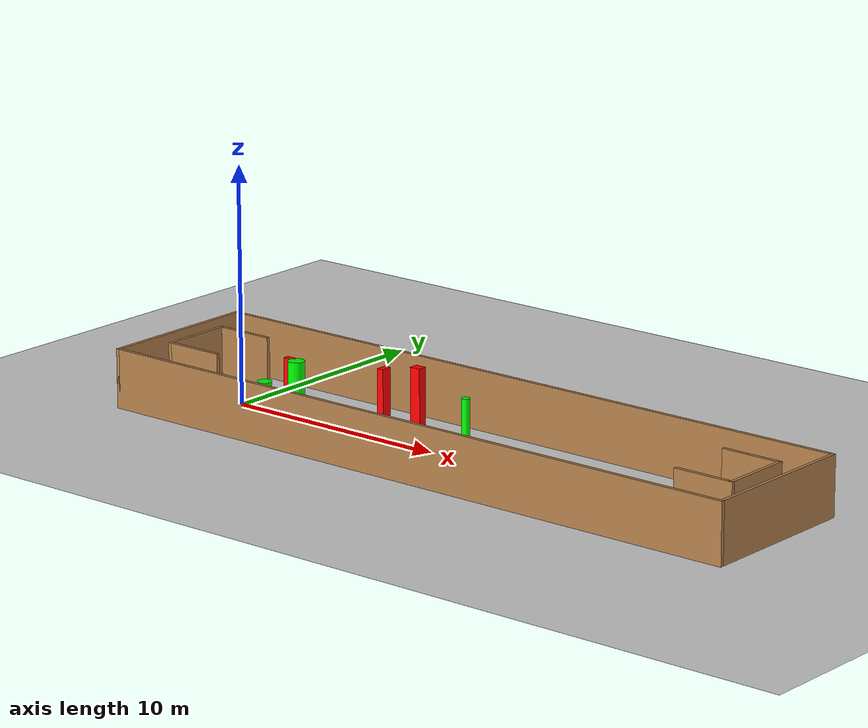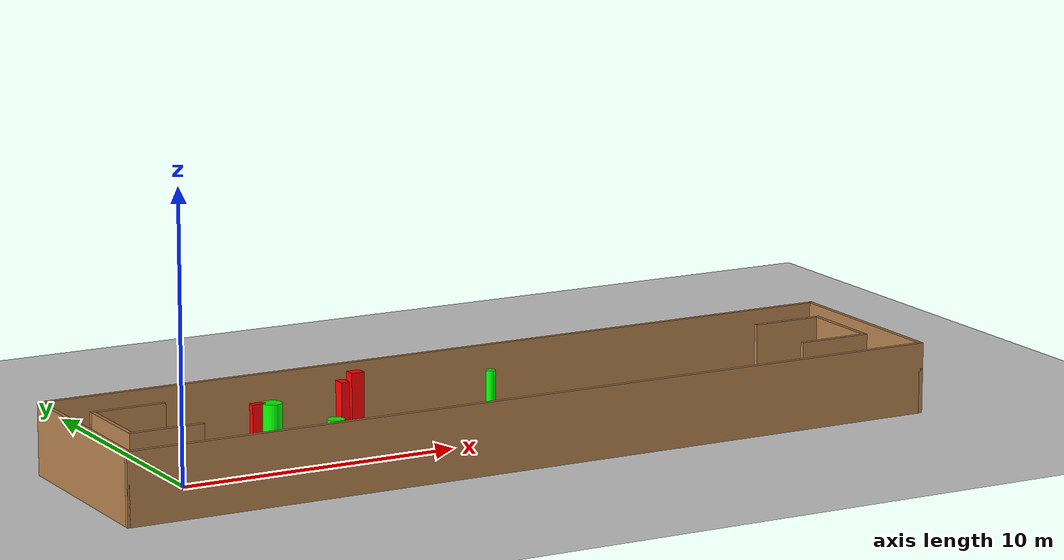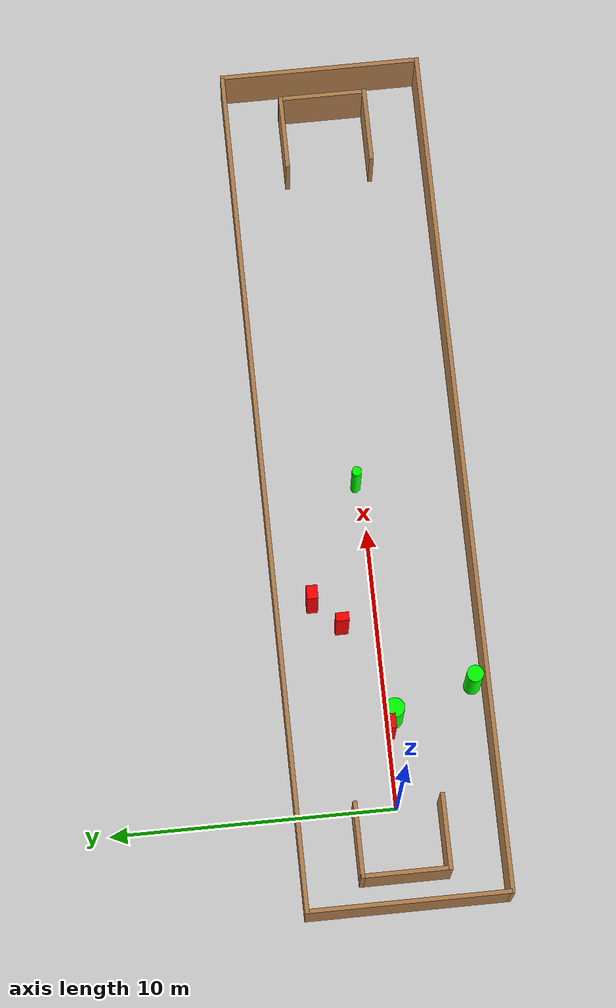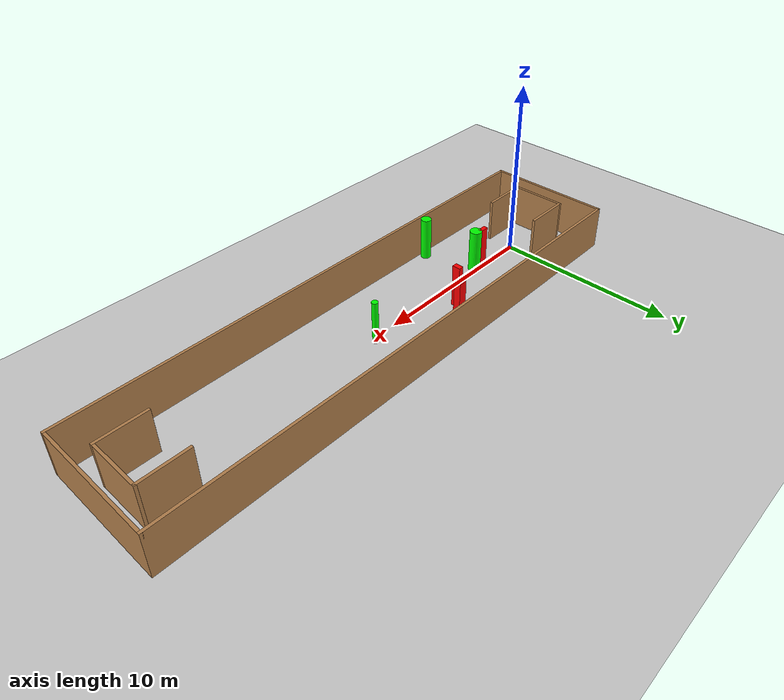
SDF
<sdf version="1.7">
 <world name="default">
  <light name="sun" type="directional">
   <pose>0 0 10 0 -0 0</pose>
   <diffuse>0.8 0.8 0.8 1</diffuse>
   <specular>0.2 0.2 0.2 1</specular>
   <attenuation>
    <range>1000</range>
    <constant>0.9</constant>
    <linear>0.01</linear>
    <quadratic>0.001</quadratic>
   </attenuation>
   <direction>-0.5 0.1 -0.9</direction>
   <spot><inner_angle>0</inner_angle><outer_angle>0</outer_angle><falloff>0</falloff></spot>
  </light>
  <model name="ground_plane">
   <static>1</static>
   <link name="link">
    <collision name="collision">
     <geometry><plane><normal>0 0 1</normal><size>100 100</size></plane></geometry>
     <surface>
      <contact><collide_bitmask>65535</collide_bitmask></contact>
      <friction><ode><mu>100</mu><mu2>50</mu2></ode></friction>
     </surface>
    </collision>
    <visual name="visual">
     <cast_shadows>0</cast_shadows>
     <geometry><plane><normal>0 0 1</normal><size>100 100</size></plane></geometry>
     <material>
      <script><uri>file://media/materials/scripts/gazebo.material</uri><name>Gazebo/Grey</name></script>
     </material>
    </visual>
   </link>
  </model>
  <gravity>0 0 -9.8</gravity>
  <magnetic_field>6e-06 2.3e-05 -4.2e-05</magnetic_field>
  <atmosphere type="adiabatic"/>
  <physics type="ode">
   <max_step_size>0.001</max_step_size>
   <real_time_factor>1</real_time_factor>
   <real_time_update_rate>1000</real_time_update_rate>
  </physics>
  <scene><ambient>0.4 0.4 0.4 1</ambient><background>0.7 0.7 0.7 1</background><shadows>1</shadows></scene>
  <spherical_coordinates>
   <surface_model>EARTH_WGS84</surface_model>
   <latitude_deg>0</latitude_deg>
   <longitude_deg>0</longitude_deg>
   <elevation>0</elevation>
   <heading_deg>0</heading_deg>
  </spherical_coordinates>
  <model name="my_base_walls">
   <link name="Wall_0">
    <collision name="Wall_0_Collision">
     <geometry><box><size>7.15 0.15 2.5</size></box></geometry>
     <pose>0 0 1.25 0 -0 0</pose>
    </collision>
    <visual name="Wall_0_Visual">
     <pose>0 0 1.25 0 -0 0</pose>
     <geometry><box><size>7.15 0.15 2.5</size></box></geometry>
     <material>
      <script><uri>file://media/materials/scripts/gazebo.material</uri><name>Gazebo/Wood</name></script>
      <ambient>1 1 1 1</ambient>
     </material>
     <meta><layer>0</layer></meta>
    </visual>
    <pose>-15 0 0 0 -0 1.5708</pose>
   </link>
   <link name="Wall_10">
    <collision name="Wall_10_Collision">
     <geometry><box><size>2.65 0.15 2.5</size></box></geometry>
     <pose>0 0 1.25 0 -0 0</pose>
    </collision>
    <visual name="Wall_10_Visual">
     <pose>0 0 1.25 0 -0 0</pose>
     <geometry><box><size>2.65 0.15 2.5</size></box></geometry>
     <material>
      <script><uri>file://media/materials/scripts/gazebo.material</uri><name>Gazebo/Wood</name></script>
      <ambient>1 1 1 1</ambient>
     </material>
     <meta><layer>0</layer></meta>
    </visual>
    <pose>-12.75 -1.5 0 0 -0 0</pose>
   </link>
   <link name="Wall_12">
    <collision name="Wall_12_Collision">
     <geometry><box><size>2.65 0.15 2.5</size></box></geometry>
     <pose>0 0 1.25 0 -0 0</pose>
    </collision>
    <visual name="Wall_12_Visual">
     <pose>0 0 1.25 0 -0 0</pose>
     <geometry><box><size>2.65 0.15 2.5</size></box></geometry>
     <material>
      <script><uri>file://media/materials/scripts/gazebo.material</uri><name>Gazebo/Wood</name></script>
      <ambient>1 1 1 1</ambient>
     </material>
     <meta><layer>0</layer></meta>
    </visual>
    <pose>-12.75 1.5 0 0 -0 0</pose>
   </link>
   <link name="Wall_14">
    <collision name="Wall_14_Collision">
     <geometry><box><size>3.15 0.15 2.5</size></box></geometry>
     <pose>0 0 1.25 0 -0 0</pose>
    </collision>
    <visual name="Wall_14_Visual">
     <pose>0 0 1.25 0 -0 0</pose>
     <geometry><box><size>3.15 0.15 2.5</size></box></geometry>
     <material>
      <script><uri>file://media/materials/scripts/gazebo.material</uri><name>Gazebo/Wood</name></script>
      <ambient>1 1 1 1</ambient>
     </material>
     <meta><layer>0</layer></meta>
    </visual>
    <pose>14 0 0 0 -0 -1.5708</pose>
   </link>
   <link name="Wall_15">
    <collision name="Wall_15_Collision">
     <geometry><box><size>2.65 0.15 2.5</size></box></geometry>
     <pose>0 0 1.25 0 -0 0</pose>
    </collision>
    <visual name="Wall_15_Visual">
     <pose>0 0 1.25 0 -0 0</pose>
     <geometry><box><size>2.65 0.15 2.5</size></box></geometry>
     <material>
      <script><uri>file://media/materials/scripts/gazebo.material</uri><name>Gazebo/Wood</name></script>
      <ambient>1 1 1 1</ambient>
     </material>
     <meta><layer>0</layer></meta>
    </visual>
    <pose>12.75 -1.5 0 0 -0 3.14159</pose>
   </link>
   <link name="Wall_17">
    <collision name="Wall_17_Collision">
     <geometry><box><size>2.65 0.15 2.5</size></box></geometry>
     <pose>0 0 1.25 0 -0 0</pose>
    </collision>
    <visual name="Wall_17_Visual">
     <pose>0 0 1.25 0 -0 0</pose>
     <geometry><box><size>2.65 0.15 2.5</size></box></geometry>
     <material>
      <script><uri>file://media/materials/scripts/gazebo.material</uri><name>Gazebo/Wood</name></script>
      <ambient>1 1 1 1</ambient>
     </material>
     <meta><layer>0</layer></meta>
    </visual>
    <pose>12.75 1.5 0 0 -0 3.14159</pose>
   </link>
   <link name="Wall_2">
    <collision name="Wall_2_Collision">
     <geometry><box><size>30.15 0.15 2.5</size></box></geometry>
     <pose>0 0 1.25 0 -0 0</pose>
    </collision>
    <visual name="Wall_2_Visual">
     <pose>0 0 1.25 0 -0 0</pose>
     <geometry><box><size>30.15 0.15 2.5</size></box></geometry>
     <material>
      <script><uri>file://media/materials/scripts/gazebo.material</uri><name>Gazebo/Wood</name></script>
      <ambient>1 1 1 1</ambient>
     </material>
     <meta><layer>0</layer></meta>
    </visual>
    <pose>-0 -3.5 0 0 -0 0</pose>
   </link>
   <link name="Wall_4">
    <collision name="Wall_4_Collision">
     <geometry><box><size>30.15 0.15 2.5</size></box></geometry>
     <pose>0 0 1.25 0 -0 0</pose>
    </collision>
    <visual name="Wall_4_Visual">
     <pose>0 0 1.25 0 -0 0</pose>
     <geometry><box><size>30.15 0.15 2.5</size></box></geometry>
     <material>
      <script><uri>file://media/materials/scripts/gazebo.material</uri><name>Gazebo/Wood</name></script>
      <ambient>1 1 1 1</ambient>
     </material>
     <meta><layer>0</layer></meta>
    </visual>
    <pose>-0 3.5 0 0 -0 0</pose>
   </link>
   <link name="Wall_6">
    <collision name="Wall_6_Collision">
     <geometry><box><size>7.15 0.15 2.5</size></box></geometry>
     <pose>0 0 1.25 0 -0 0</pose>
    </collision>
    <visual name="Wall_6_Visual">
     <pose>0 0 1.25 0 -0 0</pose>
     <geometry><box><size>7.15 0.15 2.5</size></box></geometry>
     <material>
      <script><uri>file://media/materials/scripts/gazebo.material</uri><name>Gazebo/Wood</name></script>
      <ambient>1 1 1 1</ambient>
     </material>
     <meta><layer>0</layer></meta>
    </visual>
    <pose>15 0 0 0 -0 -1.5708</pose>
   </link>
   <link name="Wall_9">
    <collision name="Wall_9_Collision">
     <geometry><box><size>3.15 0.15 2.5</size></box></geometry>
     <pose>0 0 1.25 0 -0 0</pose>
    </collision>
    <visual name="Wall_9_Visual">
     <pose>0 0 1.25 0 -0 0</pose>
     <geometry><box><size>3.15 0.15 2.5</size></box></geometry>
     <material>
      <script><uri>file://media/materials/scripts/gazebo.material</uri><name>Gazebo/Wood</name></script>
      <ambient>1 1 1 1</ambient>
     </material>
     <meta><layer>0</layer></meta>
    </visual>
    <pose>-14 0 0 0 -0 -1.5708</pose>
   </link>
   <static>1</static>
   <pose>11.5 0 0 0 -0 0</pose>
  </model>
  <model name="cylinder1">
   <static>1</static>
   <link name="link">
    <inertial>
     <mass>1</mass>
     <inertia><ixx>0.5</ixx><ixy>0</ixy><ixz>0</ixz><iyy>0.5</iyy><iyz>0</iyz><izz>1</izz></inertia>
    </inertial>
    <collision name="collision">
     <geometry><cylinder><radius>0.29491632277226704</radius><length>2.5</length></cylinder></geometry>
    </collision>
    <visual name="visual">
     <geometry><cylinder><radius>0.29491632277226704</radius><length>2.5</length></cylinder></geometry>
     <material>
      <ambient>0 1 0 1</ambient>
      <diffuse>0 1 0 1</diffuse>
      <specular>0.1 0.1 0.1 1</specular>
      <emissive>0 0 0 0</emissive>
     </material>
    </visual>
   </link>
   <pose>4.048911548435088 -3.085517774015637 1.25 0 0 0</pose>
  </model>
  <model name="cylinder2">
   <static>1</static>
   <link name="link">
    <inertial>
     <mass>1</mass>
     <inertia><ixx>0.5</ixx><ixy>0</ixy><ixz>0</ixz><iyy>0.5</iyy><iyz>0</iyz><izz>1</izz></inertia>
    </inertial>
    <collision name="collision">
     <geometry><cylinder><radius>0.1719630325763018</radius><length>2.5</length></cylinder></geometry>
    </collision>
    <visual name="visual">
     <geometry><cylinder><radius>0.1719630325763018</radius><length>2.5</length></cylinder></geometry>
     <material>
      <ambient>0 1 0 1</ambient>
      <diffuse>0 1 0 1</diffuse>
      <specular>0.1 0.1 0.1 1</specular>
      <emissive>0 0 0 0</emissive>
     </material>
    </visual>
   </link>
   <pose>11.563638041152206 0.22219253251069304 1.25 0 0 0</pose>
  </model>
  <model name="cylinder3">
   <static>1</static>
   <link name="link">
    <inertial>
     <mass>1</mass>
     <inertia><ixx>0.5</ixx><ixy>0</ixy><ixz>0</ixz><iyy>0.5</iyy><iyz>0</iyz><izz>1</izz></inertia>
    </inertial>
    <collision name="collision">
     <geometry><cylinder><radius>0.3424266447926892</radius><length>2.5</length></cylinder></geometry>
    </collision>
    <visual name="visual">
     <geometry><cylinder><radius>0.3424266447926892</radius><length>2.5</length></cylinder></geometry>
     <material>
      <ambient>0 1 0 1</ambient>
      <diffuse>0 1 0 1</diffuse>
      <specular>0.1 0.1 0.1 1</specular>
      <emissive>0 0 0 0</emissive>
     </material>
    </visual>
   </link>
   <pose>3.1483460359865276 -0.21154204248640074 1.25 0 0 0</pose>
  </model>
  <model name="box1">
   <static>1</static>
   <link name="link">
    <inertial>
     <mass>1</mass>
     <inertia><ixx>0.083</ixx><ixy>0</ixy><ixz>0</ixz><iyy>0.083</iyy><iyz>0</iyz><izz>0.083</izz></inertia>
    </inertial>
    <collision name="collision">
     <geometry><box><size>0.4780049719317559 0.38790994324494454 2.5</size></box></geometry>
    </collision>
    <visual name="visual">
     <geometry><box><size>0.4780049719317559 0.38790994324494454 2.5</size></box></geometry>
     <material>
      <ambient>1 0 0 1</ambient>
      <diffuse>1 0 0 1</diffuse>
      <specular>0.1 0.1 0.1 1</specular>
      <emissive>0 0 0 0</emissive>
     </material>
    </visual>
    <sensor name="my_contact" type="contact">
     <contact><collision>box_collision</collision><topic>__default_topic__</topic></contact>
    </sensor>
   </link>
   <pose>7.448298664827277 2.20793780518256 1.25 0 0 0</pose>
  </model>
  <model name="box2">
   <static>1</static>
   <link name="link">
    <inertial>
     <mass>1</mass>
     <inertia><ixx>0.083</ixx><ixy>0</ixy><ixz>0</ixz><iyy>0.083</iyy><iyz>0</iyz><izz>0.083</izz></inertia>
    </inertial>
    <collision name="collision">
     <geometry><box><size>0.29322167878125854 0.4614752570248306 2.5</size></box></geometry>
    </collision>
    <visual name="visual">
     <geometry><box><size>0.29322167878125854 0.4614752570248306 2.5</size></box></geometry>
     <material>
      <ambient>1 0 0 1</ambient>
      <diffuse>1 0 0 1</diffuse>
      <specular>0.1 0.1 0.1 1</specular>
      <emissive>0 0 0 0</emissive>
     </material>
    </visual>
    <sensor name="my_contact" type="contact">
     <contact><collision>box_collision</collision><topic>__default_topic__</topic></contact>
    </sensor>
   </link>
   <pose>6.484067495562639 1.256927897930371 1.25 0 0 0</pose>
  </model>
  <model name="box3">
   <static>1</static>
   <link name="link">
    <inertial>
     <mass>1</mass>
     <inertia><ixx>0.083</ixx><ixy>0</ixy><ixz>0</ixz><iyy>0.083</iyy><iyz>0</iyz><izz>0.083</izz></inertia>
    </inertial>
    <collision name="collision">
     <geometry><box><size>0.5060328160179808 0.2412788393192664 2.5</size></box></geometry>
    </collision>
    <visual name="visual">
     <geometry><box><size>0.5060328160179808 0.2412788393192664 2.5</size></box></geometry>
     <material>
      <ambient>1 0 0 1</ambient>
      <diffuse>1 0 0 1</diffuse>
      <specular>0.1 0.1 0.1 1</specular>
      <emissive>0 0 0 0</emissive>
     </material>
    </visual>
    <sensor name="my_contact" type="contact">
     <contact><collision>box_collision</collision><topic>__default_topic__</topic></contact>
    </sensor>
   </link>
   <pose>2.700581896259683 -0.07540625809564716 1.25 0 0 0</pose>
  </model>
 </world>
</sdf>
